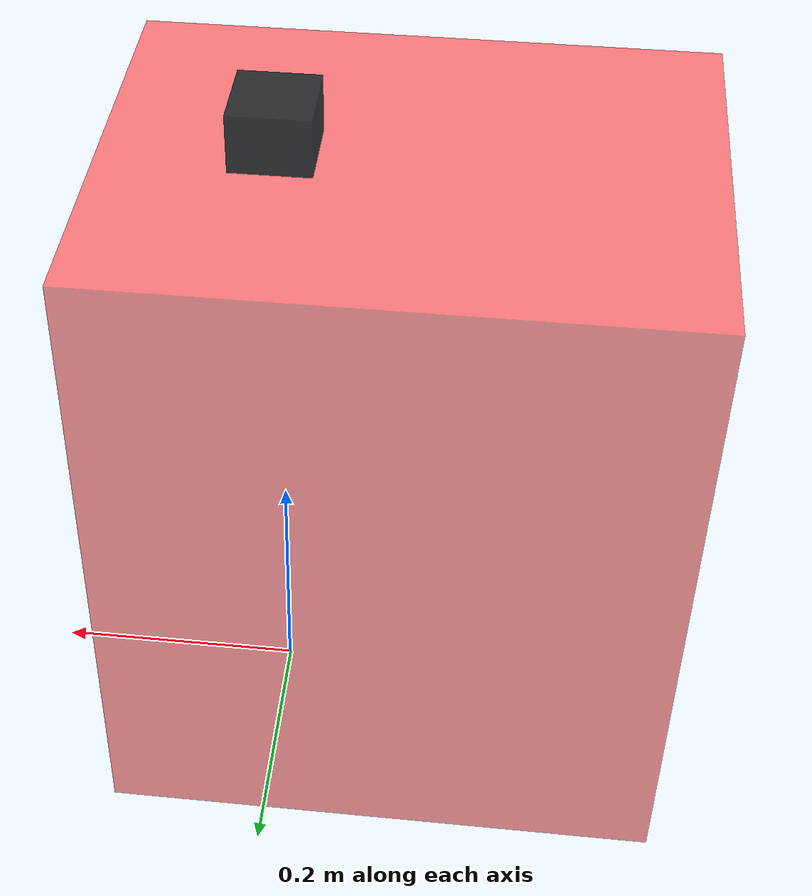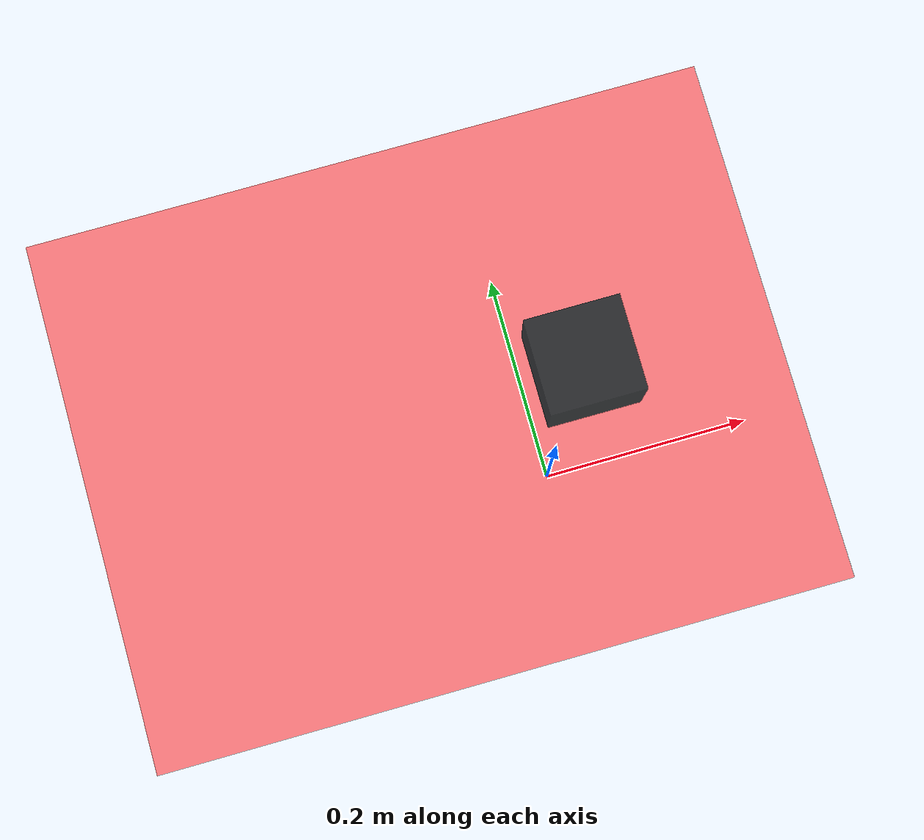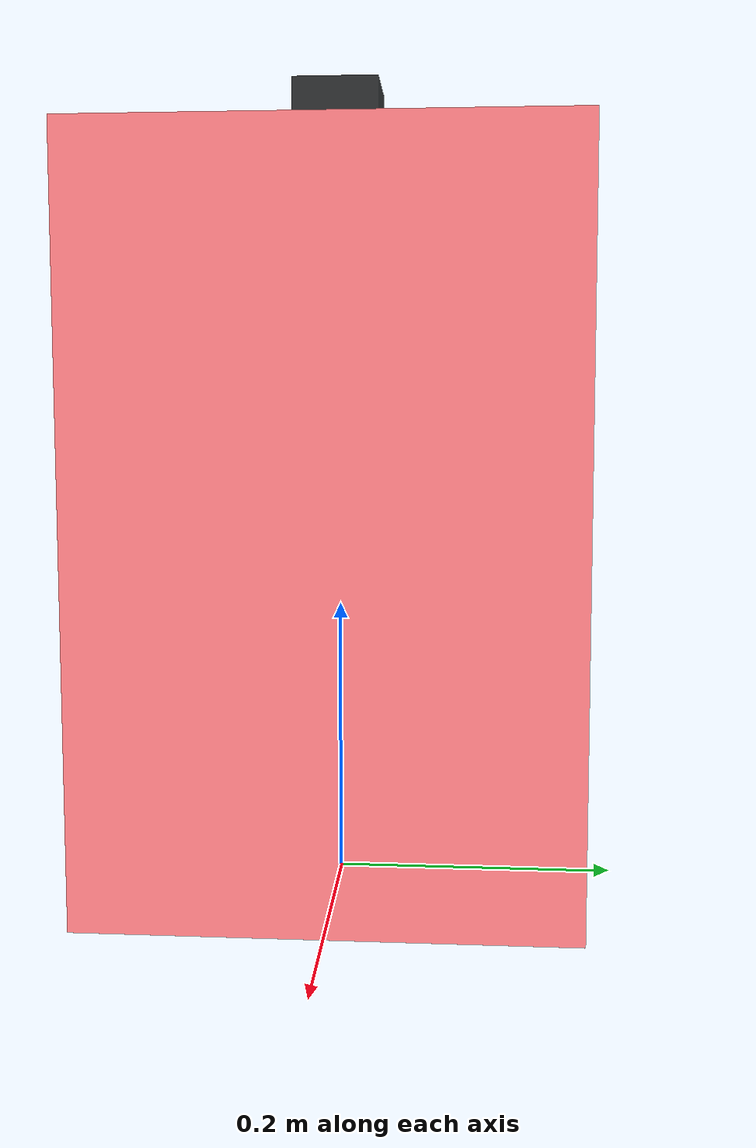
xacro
<?xml version="1.0"?>
<robot xmlns:xacro="http://www.ros.org/wiki/xacro" name="minibot_heavy_v5">
  <xacro:property name="body_d" value="0.44" />
  <xacro:property name="body_w" value="0.34" />
  <xacro:property name="body_h" value="0.5285" />
  <xacro:property name="body_x" value="${0.125-body_d/2}" />
  <xacro:property name="body_z" value="${body_h/2}" />

  <link name="base_link">
    <collision>
      <origin rpy="0 0 0" xyz="${body_x} 0 ${body_z}"/>
      <geometry>
        <box size="${body_d} ${body_w} ${body_h}"/>
      </geometry>
    </collision>
    <visual>
      <origin rpy="0 0 0" xyz="${body_x} 0 ${body_z}"/>
      <geometry>
        <box size="${body_d} ${body_w} ${body_h}"/>
      </geometry>
      <material name="vehicle_mat">
        <color rgba="1.0 0.0 0.0 0.5"/>
      </material>
    </visual>
  </link>

  <xacro:property name="laser_d" value="0.06" />
  <xacro:property name="laser_w" value="0.06" />
  <xacro:property name="laser_h" value="0.09" />
  <xacro:property name="laser1_x" value="0.0" />
  <xacro:property name="laser1_z" value="${body_h}" />

  <joint name="laser1_joint" type="fixed">
    <origin xyz="${laser1_x} 0 ${laser1_z}" rpy="0 0 0"/>
    <parent link="base_link"/>
    <child link="base_laser_link"/>
  </joint>

  <link name="base_laser_link">
    <collision>
      <origin rpy="0 0 0" xyz="0 0 0"/>
      <geometry>
        <box size="${laser_d} ${laser_w} ${laser_h}"/>
      </geometry>
    </collision>
    <visual>
      <origin rpy="0 0 0" xyz="0 0 0"/>
      <geometry>
        <box size="${laser_d} ${laser_w} ${laser_h}"/>
      </geometry>
      <material name="laser_mat">
        <color rgba="0.0 0.0 0.0 0.8"/>
      </material>
    </visual>
  </link>
</robot>
